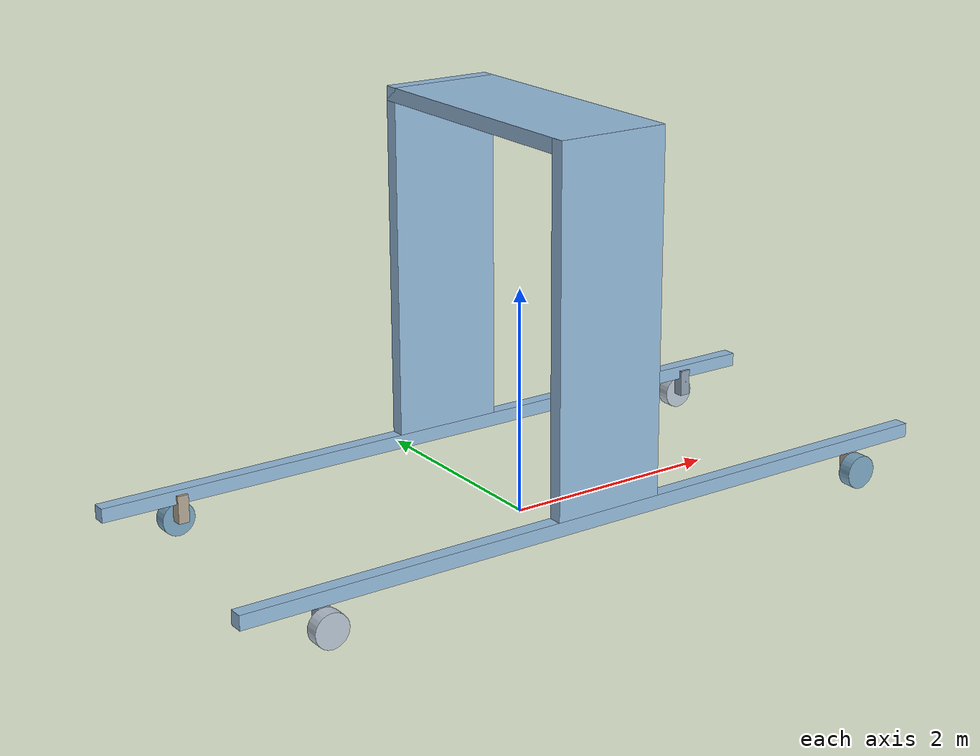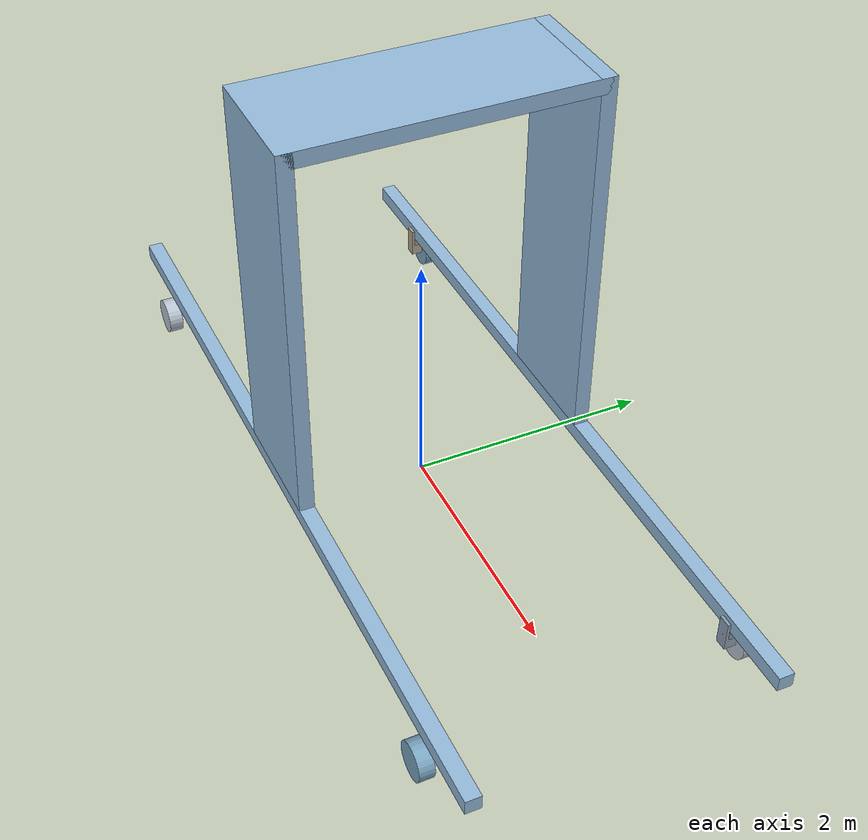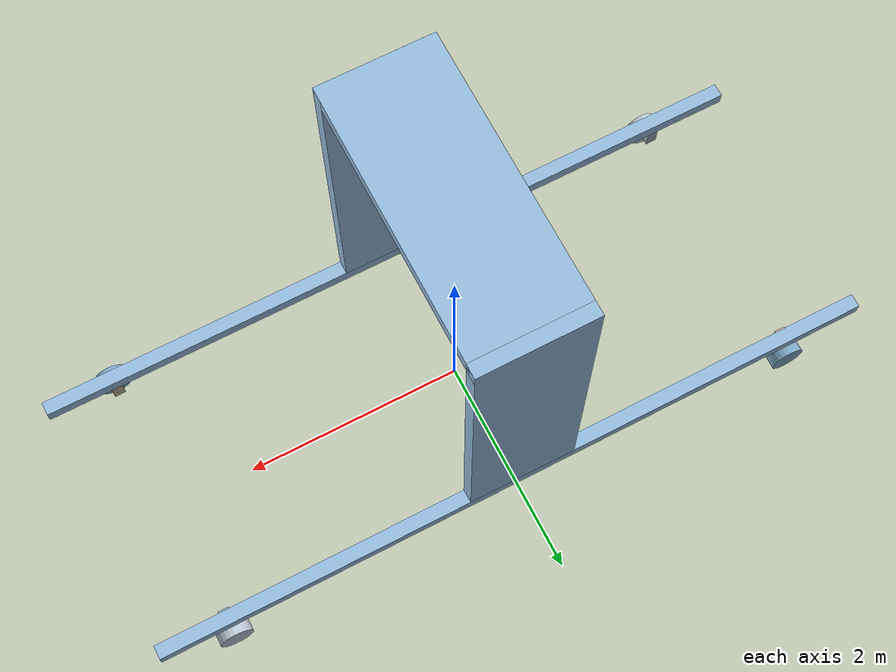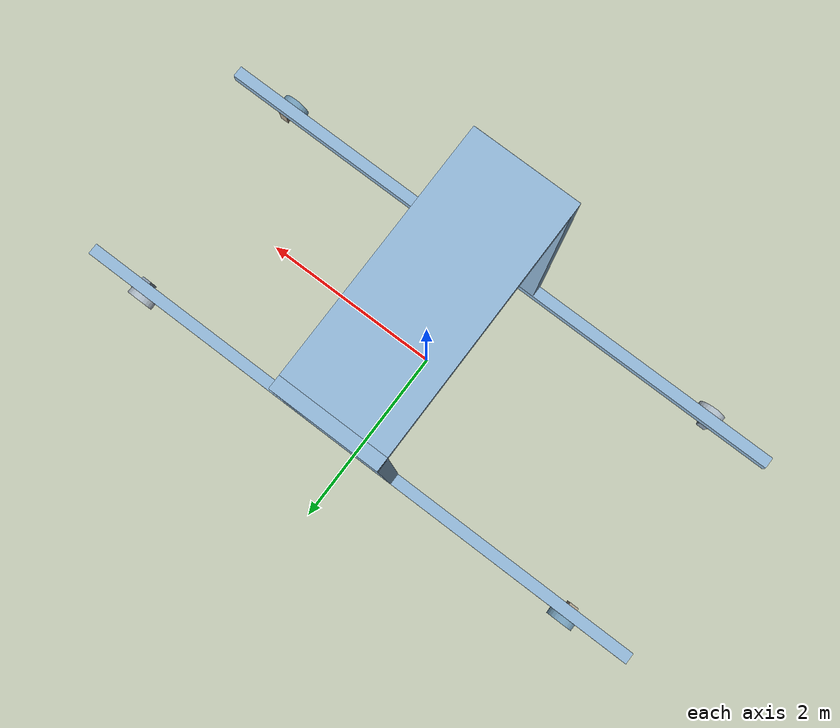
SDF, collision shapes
<?xml version='1.0' encoding='utf-8'?>
<sdf version="1.7">
  <model name="agv_robot">
    <static>false</static>
    <self_collide>false</self_collide>
    <link name="frame">
      <inertial>
        <pose>0 0 1.83574295 0 0 0</pose>
        <mass>1326.44299</mass>
        <inertia>
          <ixx>2026.91133</ixx>
          <iyy>6371.375</iyy>
          <izz>5727.59518</izz>
          <ixy>0</ixy>
          <ixz>0</ixz>
          <iyz>0</iyz>
        </inertia>
      </inertial>
      <collision name="right_rail_collision">
        <pose>0 1.188 0.3857 0 0 0</pose>
        <geometry>
          <box>
            <size>6.7498 0.125 0.125</size>
          </box>
        </geometry>
      </collision>
      <collision name="left_rail_collision">
        <pose>0 -1.1869 0.3854 0 0 0</pose>
        <geometry>
          <box>
            <size>6.7498 0.125 0.125</size>
          </box>
        </geometry>
      </collision>
      <collision name="right_upright_collision">
        <pose>0 1.1875 2.0111 0 0 0</pose>
        <geometry>
          <box>
            <size>1 0.1264 3.1249</size>
          </box>
        </geometry>
      </collision>
      <collision name="left_upright_collision">
        <pose>0 -1.1875 2.0103 0 0 0</pose>
        <geometry>
          <box>
            <size>1 0.1264 3.125</size>
          </box>
        </geometry>
      </collision>
      <collision name="top_beam_collision">
        <pose>0 0 3.5106 0 0 0</pose>
        <geometry>
          <box>
            <size>1 2.5 0.1258</size>
          </box>
        </geometry>
      </collision>
      <visual name="Shape_mesh_visual">
        <!-- The imported CAD uses -X as its visual front. Rotate it so the
             roof-lidar side agrees with the vehicle/control +X direction. -->
        <pose>0 0 0 0 0 3.141592653589793</pose>
        <geometry>
          <mesh>
            <uri>model://agv_robot/meshes/visual/Shape.dae</uri>
          </mesh>
        </geometry>
        <material>
          <lighting>true</lighting>
          <ambient>0.3 0.39 0.48 1</ambient>
          <diffuse>0.58 0.73 0.86 1</diffuse>
          <specular>0.85 0.92 1 1</specular>
          <emissive>0.006 0.01 0.015 1</emissive>
        </material>
      </visual>
      <visual name="velodyneVPL_16_mesh_visual">
        <pose>0 0 0 0 0 3.141592653589793</pose>
        <geometry>
          <mesh>
            <uri>model://agv_robot/meshes/visual/velodyneVPL_16.dae</uri>
          </mesh>
        </geometry>
        <material>
          <lighting>true</lighting>
          <ambient>0.18 0.38 0.4 1</ambient>
          <diffuse>0.35 0.8 0.83 1</diffuse>
          <specular>0.82 1 1 1</specular>
          <emissive>0.01 0.045 0.05 1</emissive>
        </material>
      </visual>
      <visual name="lidar_rear_right_housing_visual">
        <pose>-2.65652943 -1.17497706 1.12 0 0 0</pose>
        <geometry>
          <cylinder>
            <radius>0.075</radius>
            <length>0.12</length>
          </cylinder>
        </geometry>
        <material>
          <lighting>true</lighting>
          <ambient>0.18 0.38 0.4 1</ambient>
          <diffuse>0.35 0.8 0.83 1</diffuse>
          <specular>0.82 1 1 1</specular>
          <emissive>0.01 0.045 0.05 1</emissive>
        </material>
      </visual>
      <sensor name="lidar_rear_right" type="ray">
        <pose>-2.65652943 -1.17497706 1.13 0 0 0</pose>
        <always_on>true</always_on>
        <visualize>false</visualize>
        <update_rate>10</update_rate>
        <ray>
          <scan>
            <horizontal>
              <samples>360</samples>
              <resolution>1</resolution>
              <min_angle>-3.14159265</min_angle>
              <max_angle>3.14159265</max_angle>
            </horizontal>
            <vertical>
              <samples>16</samples>
              <resolution>1</resolution>
              <min_angle>-0.261799388</min_angle>
              <max_angle>0.261799388</max_angle>
            </vertical>
          </scan>
          <range>
            <min>0.20</min>
            <max>30.0</max>
            <resolution>0.01</resolution>
          </range>
          <noise>
            <type>gaussian</type>
            <mean>0.0</mean>
            <stddev>0.005</stddev>
          </noise>
        </ray>
        <plugin name="lidar_rear_right_ros" filename="libgazebo_ros_ray_sensor.so">
          <ros>
            <namespace>/agv_4wis</namespace>
            <remapping>~/out:=lidar/rear_right/points</remapping>
          </ros>
          <output_type>sensor_msgs/PointCloud2</output_type>
          <frame_name>lidar_rear_right_frame</frame_name>
        </plugin>
      </sensor>
      <visual name="lidar_rear_left_housing_visual">
        <pose>-2.65652823 1.15019238 1.12 0 0 0</pose>
        <geometry>
          <cylinder>
            <radius>0.075</radius>
            <length>0.12</length>
          </cylinder>
        </geometry>
        <material>
          <lighting>true</lighting>
          <ambient>0.18 0.38 0.4 1</ambient>
          <diffuse>0.35 0.8 0.83 1</diffuse>
          <specular>0.82 1 1 1</specular>
          <emissive>0.01 0.045 0.05 1</emissive>
        </material>
      </visual>
      <sensor name="lidar_rear_left" type="ray">
        <pose>-2.65652823 1.15019238 1.13 0 0 0</pose>
        <always_on>true</always_on>
        <visualize>false</visualize>
        <update_rate>10</update_rate>
        <ray>
          <scan>
            <horizontal>
              <samples>360</samples>
              <resolution>1</resolution>
              <min_angle>-3.14159265</min_angle>
              <max_angle>3.14159265</max_angle>
            </horizontal>
            <vertical>
              <samples>16</samples>
              <resolution>1</resolution>
              <min_angle>-0.261799388</min_angle>
              <max_angle>0.261799388</max_angle>
            </vertical>
          </scan>
          <range>
            <min>0.20</min>
            <max>30.0</max>
            <resolution>0.01</resolution>
          </range>
          <noise>
            <type>gaussian</type>
            <mean>0.0</mean>
            <stddev>0.005</stddev>
          </noise>
        </ray>
        <plugin name="lidar_rear_left_ros" filename="libgazebo_ros_ray_sensor.so">
          <ros>
            <namespace>/agv_4wis</namespace>
            <remapping>~/out:=lidar/rear_left/points</remapping>
          </ros>
          <output_type>sensor_msgs/PointCloud2</output_type>
          <frame_name>lidar_rear_left_frame</frame_name>
        </plugin>
      </sensor>
      <visual name="lidar_front_right_housing_visual">
        <pose>2.74429417 -1.17498243 1.12 0 0 0</pose>
        <geometry>
          <cylinder>
            <radius>0.075</radius>
            <length>0.12</length>
          </cylinder>
        </geometry>
        <material>
          <lighting>true</lighting>
          <ambient>0.18 0.38 0.4 1</ambient>
          <diffuse>0.35 0.8 0.83 1</diffuse>
          <specular>0.82 1 1 1</specular>
          <emissive>0.01 0.045 0.05 1</emissive>
        </material>
      </visual>
      <sensor name="lidar_front_right" type="ray">
        <pose>2.74429417 -1.17498243 1.13 0 0 0</pose>
        <always_on>true</always_on>
        <visualize>false</visualize>
        <update_rate>10</update_rate>
        <ray>
          <scan>
            <horizontal>
              <samples>360</samples>
              <resolution>1</resolution>
              <min_angle>-3.14159265</min_angle>
              <max_angle>3.14159265</max_angle>
            </horizontal>
            <vertical>
              <samples>16</samples>
              <resolution>1</resolution>
              <min_angle>-0.261799388</min_angle>
              <max_angle>0.261799388</max_angle>
            </vertical>
          </scan>
          <range>
            <min>0.20</min>
            <max>30.0</max>
            <resolution>0.01</resolution>
          </range>
          <noise>
            <type>gaussian</type>
            <mean>0.0</mean>
            <stddev>0.005</stddev>
          </noise>
        </ray>
        <plugin name="lidar_front_right_ros" filename="libgazebo_ros_ray_sensor.so">
          <ros>
            <namespace>/agv_4wis</namespace>
            <remapping>~/out:=lidar/front_right/points</remapping>
          </ros>
          <output_type>sensor_msgs/PointCloud2</output_type>
          <frame_name>lidar_front_right_frame</frame_name>
        </plugin>
      </sensor>
      <visual name="lidar_front_left_housing_visual">
        <pose>2.74429154 1.15019083 1.12 0 0 0</pose>
        <geometry>
          <cylinder>
            <radius>0.075</radius>
            <length>0.12</length>
          </cylinder>
        </geometry>
        <material>
          <lighting>true</lighting>
          <ambient>0.18 0.38 0.4 1</ambient>
          <diffuse>0.35 0.8 0.83 1</diffuse>
          <specular>0.82 1 1 1</specular>
          <emissive>0.01 0.045 0.05 1</emissive>
        </material>
      </visual>
      <sensor name="lidar_front_left" type="ray">
        <pose>2.74429154 1.15019083 1.13 0 0 0</pose>
        <always_on>true</always_on>
        <visualize>false</visualize>
        <update_rate>10</update_rate>
        <ray>
          <scan>
            <horizontal>
              <samples>360</samples>
              <resolution>1</resolution>
              <min_angle>-3.14159265</min_angle>
              <max_angle>3.14159265</max_angle>
            </horizontal>
            <vertical>
              <samples>16</samples>
              <resolution>1</resolution>
              <min_angle>-0.261799388</min_angle>
              <max_angle>0.261799388</max_angle>
            </vertical>
          </scan>
          <range>
            <min>0.20</min>
            <max>30.0</max>
            <resolution>0.01</resolution>
          </range>
          <noise>
            <type>gaussian</type>
            <mean>0.0</mean>
            <stddev>0.005</stddev>
          </noise>
        </ray>
        <plugin name="lidar_front_left_ros" filename="libgazebo_ros_ray_sensor.so">
          <ros>
            <namespace>/agv_4wis</namespace>
            <remapping>~/out:=lidar/front_left/points</remapping>
          </ros>
          <output_type>sensor_msgs/PointCloud2</output_type>
          <frame_name>lidar_front_left_frame</frame_name>
        </plugin>
      </sensor>
    </link>
    <link name="Cylinder1">
      <pose>-2.65652943 -1.17497706 0.402911067 0 0 0</pose>
      <inertial>
        <pose>0 0 0 0 0 0</pose>
        <mass>10</mass>
        <inertia>
          <ixx>0.08</ixx>
          <iyy>0.08</iyy>
          <izz>0.03</izz>
          <ixy>0</ixy>
          <ixz>0</ixz>
          <iyz>0</iyz>
        </inertia>
      </inertial>
      <collision name="Cylinder1_collision">
        <pose>0.00726056099 -2.45571136e-05 -0.101997674 0 0 0</pose>
        <geometry>
          <cylinder>
            <radius>0.0500000007</radius>
            <length>0.100000001</length>
          </cylinder>
        </geometry>
      </collision>
      <collision name="rear_right_fork_collision">
        <pose>1.83582306e-05 0 -0.124986537 0 0 0</pose>
        <geometry>
          <box>
            <size>0.1 0.1 0.25</size>
          </box>
        </geometry>
      </collision>
      <visual name="Shape4_mesh_visual">
        <geometry>
          <mesh>
            <uri>model://agv_robot/meshes/visual/Shape4.dae</uri>
          </mesh>
        </geometry>
        <material>
          <lighting>true</lighting>
          <ambient>0.27 0.3 0.34 1</ambient>
          <diffuse>0.56 0.63 0.7 1</diffuse>
          <specular>0.82 0.87 0.93 1</specular>
          <emissive>0 0 0 1</emissive>
        </material>
      </visual>
    </link>
    <link name="Gwheel1">
      <pose>-2.65651107 -1.28503799 0.152937993 1.57079633 0 0</pose>
      <inertial>
        <pose>0 0 0 0 0 0</pose>
        <mass>8.47753716</mass>
        <inertia>
          <ixx>0.0578297281</ixx>
          <iyy>0.0578297281</iyy>
          <izz>0.0953093631</izz>
          <ixy>0</ixy>
          <ixz>0</ixz>
          <iyz>0</iyz>
        </inertia>
      </inertial>
      <collision name="Gwheel1_collision">
        <pose>0 0 0 0 0 0</pose>
        <geometry>
          <cylinder>
            <radius>0.149950504</radius>
            <length>0.120011806</length>
          </cylinder>
        </geometry>
        <surface>
          <friction>
            <ode>
              <mu>2.2</mu>
              <mu2>2.2</mu2>
            </ode>
          </friction>
        </surface>
      </collision>
      <visual name="Shape6_mesh_visual">
        <geometry>
          <mesh>
            <uri>model://agv_robot/meshes/visual/Shape6.dae</uri>
          </mesh>
        </geometry>
        <material>
          <lighting>true</lighting>
          <ambient>0.36 0.39 0.43 1</ambient>
          <diffuse>0.72 0.77 0.82 1</diffuse>
          <specular>0.95 0.97 1 1</specular>
          <emissive>0 0 0 1</emissive>
        </material>
      </visual>
    </link>
    <joint name="frame_wheel10" type="revolute">
      <parent>frame</parent>
      <child>Cylinder1</child>
      <pose relative_to="__model__">-2.65652943 -1.17497706 0.402911067 0 0 0</pose>
      <axis>
        <xyz>0 0 1</xyz>
        <limit>
          <lower>-3.14159265</lower>
          <upper>3.14159265</upper>
          <effort>10000</effort>
          <velocity>5</velocity>
        </limit>
        <dynamics>
          <damping>1</damping>
          <friction>0.01</friction>
        </dynamics>
      </axis>
    </joint>
    <joint name="frame_wheel1" type="revolute">
      <parent>Cylinder1</parent>
      <child>Gwheel1</child>
      <pose relative_to="__model__">-2.65651107 -1.28503799 0.152937993 1.57079633 0 0</pose>
      <axis>
        <xyz>0 0 1</xyz>
        <limit>
          <lower>-1e+16</lower>
          <upper>1e+16</upper>
          <effort>10000</effort>
          <velocity>30</velocity>
        </limit>
        <dynamics>
          <damping>5</damping>
          <friction>0.01</friction>
        </dynamics>
      </axis>
    </joint>
    <link name="Cylinder2">
      <pose>-2.65652823 1.15019238 0.402511299 0 0 0</pose>
      <inertial>
        <pose>0 0 0 0 0 0</pose>
        <mass>10</mass>
        <inertia>
          <ixx>0.08</ixx>
          <iyy>0.08</iyy>
          <izz>0.03</izz>
          <ixy>0</ixy>
          <ixz>0</ixz>
          <iyz>0</iyz>
        </inertia>
      </inertial>
      <collision name="Cylinder2_collision">
        <pose>0.00724554062 1.8119812e-05 -0.101996481 0 0 0</pose>
        <geometry>
          <cylinder>
            <radius>0.0500000007</radius>
            <length>0.100000001</length>
          </cylinder>
        </geometry>
      </collision>
      <collision name="rear_left_fork_collision">
        <pose>2.47955322e-05 0 -0.125011571 0 0 0</pose>
        <geometry>
          <box>
            <size>0.1 0.1 0.25</size>
          </box>
        </geometry>
      </collision>
      <visual name="Shape10_mesh_visual">
        <geometry>
          <mesh>
            <uri>model://agv_robot/meshes/visual/Shape10.dae</uri>
          </mesh>
        </geometry>
        <material>
          <lighting>true</lighting>
          <ambient>0.32 0.3 0.27 1</ambient>
          <diffuse>0.7 0.65 0.57 1</diffuse>
          <specular>0.88 0.84 0.78 1</specular>
          <emissive>0 0 0 1</emissive>
        </material>
      </visual>
    </link>
    <link name="Gwheel2">
      <pose>-2.65650344 1.26013911 0.152488157 1.57079633 0 0</pose>
      <inertial>
        <pose>0 0 0 0 0 0</pose>
        <mass>8.4776659</mass>
        <inertia>
          <ixx>0.0578310004</ixx>
          <iyy>0.0578310004</iyy>
          <izz>0.0953111137</izz>
          <ixy>0</ixy>
          <ixz>0</ixz>
          <iyz>0</iyz>
        </inertia>
      </inertial>
      <collision name="Gwheel2_collision">
        <pose>0 0 0 0 0 0</pose>
        <geometry>
          <cylinder>
            <radius>0.149950743</radius>
            <length>0.120013237</length>
          </cylinder>
        </geometry>
        <surface>
          <friction>
            <ode>
              <mu>2.2</mu>
              <mu2>2.2</mu2>
            </ode>
          </friction>
        </surface>
      </collision>
      <visual name="Shape11_mesh_visual">
        <geometry>
          <mesh>
            <uri>model://agv_robot/meshes/visual/Shape11.dae</uri>
          </mesh>
        </geometry>
        <material>
          <lighting>true</lighting>
          <ambient>0.25 0.33 0.4 1</ambient>
          <diffuse>0.48 0.65 0.76 1</diffuse>
          <specular>0.9 0.95 1 1</specular>
          <emissive>0 0 0 1</emissive>
        </material>
      </visual>
    </link>
    <joint name="frame_wheel20" type="revolute">
      <parent>frame</parent>
      <child>Cylinder2</child>
      <pose relative_to="__model__">-2.65652823 1.15019238 0.402511299 0 0 0</pose>
      <axis>
        <xyz>0 0 1</xyz>
        <limit>
          <lower>-3.14159265</lower>
          <upper>3.14159265</upper>
          <effort>10000</effort>
          <velocity>5</velocity>
        </limit>
        <dynamics>
          <damping>1</damping>
          <friction>0.01</friction>
        </dynamics>
      </axis>
    </joint>
    <joint name="frame_wheel2" type="revolute">
      <parent>Cylinder2</parent>
      <child>Gwheel2</child>
      <pose relative_to="__model__">-2.65650344 1.26013911 0.152488157 1.57079633 0 0</pose>
      <axis>
        <xyz>0 0 1</xyz>
        <limit>
          <lower>-1e+16</lower>
          <upper>1e+16</upper>
          <effort>10000</effort>
          <velocity>30</velocity>
        </limit>
        <dynamics>
          <damping>5</damping>
          <friction>0.01</friction>
        </dynamics>
      </axis>
    </joint>
    <link name="Cylinder4">
      <pose>2.74429154 1.15019083 0.402023673 0 0 0</pose>
      <inertial>
        <pose>0 0 0 0 0 0</pose>
        <mass>10</mass>
        <inertia>
          <ixx>0.08</ixx>
          <iyy>0.08</iyy>
          <izz>0.03</izz>
          <ixy>0</ixy>
          <ixz>0</ixz>
          <iyz>0</iyz>
        </inertia>
      </inertial>
      <collision name="Cylinder4_collision">
        <pose>0.00725698471 -2.76565552e-05 -0.101997972 0 0 0</pose>
        <geometry>
          <cylinder>
            <radius>0.0500000007</radius>
            <length>0.100000001</length>
          </cylinder>
        </geometry>
      </collision>
      <collision name="front_left_fork_collision">
        <pose>1.02519989e-05 0 -0.125015162 0 0 0</pose>
        <geometry>
          <box>
            <size>0.1 0.1 0.25</size>
          </box>
        </geometry>
      </collision>
      <visual name="Shape7_mesh_visual">
        <geometry>
          <mesh>
            <uri>model://agv_robot/meshes/visual/Shape7.dae</uri>
          </mesh>
        </geometry>
        <material>
          <lighting>true</lighting>
          <ambient>0.27 0.3 0.34 1</ambient>
          <diffuse>0.56 0.63 0.7 1</diffuse>
          <specular>0.82 0.87 0.93 1</specular>
          <emissive>0 0 0 1</emissive>
        </material>
      </visual>
    </link>
    <link name="Gwheel4">
      <pose>2.7443018 1.26012254 0.151993349 1.57079633 0 0</pose>
      <inertial>
        <pose>0 0 0 0 0 0</pose>
        <mass>8.47756577</mass>
        <inertia>
          <ixx>0.0578300299</ixx>
          <iyy>0.0578300299</iyy>
          <izz>0.0953098174</izz>
          <ixy>0</ixy>
          <ixz>0</ixz>
          <iyz>0</iyz>
        </inertia>
      </inertial>
      <collision name="Gwheel4_collision">
        <pose>0 0 0 0 0 0</pose>
        <geometry>
          <cylinder>
            <radius>0.149950609</radius>
            <length>0.120012045</length>
          </cylinder>
        </geometry>
        <surface>
          <friction>
            <ode>
              <mu>2.2</mu>
              <mu2>2.2</mu2>
            </ode>
          </friction>
        </surface>
      </collision>
      <visual name="Shape8_mesh_visual">
        <geometry>
          <mesh>
            <uri>model://agv_robot/meshes/visual/Shape8.dae</uri>
          </mesh>
        </geometry>
        <material>
          <lighting>true</lighting>
          <ambient>0.36 0.39 0.43 1</ambient>
          <diffuse>0.72 0.77 0.82 1</diffuse>
          <specular>0.95 0.97 1 1</specular>
          <emissive>0 0 0 1</emissive>
        </material>
      </visual>
    </link>
    <joint name="frame_wheel40" type="revolute">
      <parent>frame</parent>
      <child>Cylinder4</child>
      <pose relative_to="__model__">2.74429154 1.15019083 0.402023673 0 0 0</pose>
      <axis>
        <xyz>0 0 1</xyz>
        <limit>
          <lower>-3.14159265</lower>
          <upper>3.14159265</upper>
          <effort>10000</effort>
          <velocity>5</velocity>
        </limit>
        <dynamics>
          <damping>1</damping>
          <friction>0.01</friction>
        </dynamics>
      </axis>
    </joint>
    <joint name="frame_wheel4" type="revolute">
      <parent>Cylinder4</parent>
      <child>Gwheel4</child>
      <pose relative_to="__model__">2.7443018 1.26012254 0.151993349 1.57079633 0 0</pose>
      <axis>
        <xyz>0 0 1</xyz>
        <limit>
          <lower>-1e+16</lower>
          <upper>1e+16</upper>
          <effort>10000</effort>
          <velocity>30</velocity>
        </limit>
        <dynamics>
          <damping>5</damping>
          <friction>0.01</friction>
        </dynamics>
      </axis>
    </joint>
    <link name="Cylinder3">
      <pose>2.74429417 -1.17498243 0.402662247 0 0 0</pose>
      <inertial>
        <pose>0 0 0 0 0 0</pose>
        <mass>10</mass>
        <inertia>
          <ixx>0.08</ixx>
          <iyy>0.08</iyy>
          <izz>0.03</izz>
          <ixy>0</ixy>
          <ixz>0</ixz>
          <iyz>0</iyz>
        </inertia>
      </inertial>
      <collision name="Cylinder3_collision">
        <pose>0.00725746155 -2.8014183e-05 -0.101997972 0 0 0</pose>
        <geometry>
          <cylinder>
            <radius>0.0500000007</radius>
            <length>0.100000001</length>
          </cylinder>
        </geometry>
      </collision>
      <collision name="front_right_fork_collision">
        <pose>9.05990601e-06 0 -0.124984235 0 0 0</pose>
        <geometry>
          <box>
            <size>0.1 0.1 0.25</size>
          </box>
        </geometry>
      </collision>
      <visual name="Shape1_mesh_visual">
        <geometry>
          <mesh>
            <uri>model://agv_robot/meshes/visual/Shape1.dae</uri>
          </mesh>
        </geometry>
        <material>
          <lighting>true</lighting>
          <ambient>0.32 0.3 0.27 1</ambient>
          <diffuse>0.7 0.65 0.57 1</diffuse>
          <specular>0.88 0.84 0.78 1</specular>
          <emissive>0 0 0 1</emissive>
        </material>
      </visual>
    </link>
    <link name="Gwheel3">
      <pose>2.74430323 -1.28505182 0.152693778 1.57079633 0 0</pose>
      <inertial>
        <pose>0 0 0 0 0 0</pose>
        <mass>8.47755909</mass>
        <inertia>
          <ixx>0.0578300551</ixx>
          <iyy>0.0578300551</iyy>
          <izz>0.0953100454</izz>
          <ixy>0</ixy>
          <ixz>0</ixz>
          <iyz>0</iyz>
        </inertia>
      </inertial>
      <collision name="Gwheel3_collision">
        <pose>0 0 0 0 0 0</pose>
        <geometry>
          <cylinder>
            <radius>0.149950847</radius>
            <length>0.120011568</length>
          </cylinder>
        </geometry>
        <surface>
          <friction>
            <ode>
              <mu>2.2</mu>
              <mu2>2.2</mu2>
            </ode>
          </friction>
        </surface>
      </collision>
      <visual name="Shape2_mesh_visual">
        <geometry>
          <mesh>
            <uri>model://agv_robot/meshes/visual/Shape2.dae</uri>
          </mesh>
        </geometry>
        <material>
          <lighting>true</lighting>
          <ambient>0.25 0.33 0.4 1</ambient>
          <diffuse>0.48 0.65 0.76 1</diffuse>
          <specular>0.9 0.95 1 1</specular>
          <emissive>0 0 0 1</emissive>
        </material>
      </visual>
    </link>
    <joint name="frame_wheel30" type="revolute">
      <parent>frame</parent>
      <child>Cylinder3</child>
      <pose relative_to="__model__">2.74429417 -1.17498243 0.402662247 0 0 0</pose>
      <axis>
        <xyz>0 0 1</xyz>
        <limit>
          <lower>-3.14159265</lower>
          <upper>3.14159265</upper>
          <effort>10000</effort>
          <velocity>5</velocity>
        </limit>
        <dynamics>
          <damping>1</damping>
          <friction>0.01</friction>
        </dynamics>
      </axis>
    </joint>
    <joint name="frame_wheel3" type="revolute">
      <parent>Cylinder3</parent>
      <child>Gwheel3</child>
      <pose relative_to="__model__">2.74430323 -1.28505182 0.152693778 1.57079633 0 0</pose>
      <axis>
        <xyz>0 0 1</xyz>
        <limit>
          <lower>-1e+16</lower>
          <upper>1e+16</upper>
          <effort>10000</effort>
          <velocity>30</velocity>
        </limit>
        <dynamics>
          <damping>5</damping>
          <friction>0.01</friction>
        </dynamics>
      </axis>
    </joint>
    <plugin name="agv_4wis_joint_controller" filename="libagv_4wis_joint_controller.so">
      <ros />
      <config_package>agv_4wis_gazebo_open</config_package>
      <joint_config>config/joints/frame_wheel10.yaml</joint_config>
      <joint_config>config/joints/frame_wheel1.yaml</joint_config>
      <joint_config>config/joints/frame_wheel20.yaml</joint_config>
      <joint_config>config/joints/frame_wheel2.yaml</joint_config>
      <joint_config>config/joints/frame_wheel40.yaml</joint_config>
      <joint_config>config/joints/frame_wheel4.yaml</joint_config>
      <joint_config>config/joints/frame_wheel30.yaml</joint_config>
      <joint_config>config/joints/frame_wheel3.yaml</joint_config>
    </plugin>
  </model>
</sdf>
